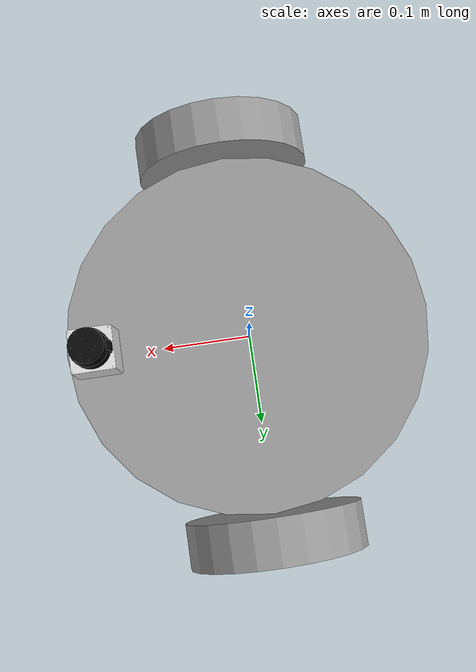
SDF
<?xml version='1.0'?>
<sdf version='1.6'>
  <model name='LastDay'>
    <link name='link_0'>
      <pose frame=''>0.001888 -0.000564 -0.002404 0 -0 0</pose>
      <inertial>
        <mass>1</mass>
        <inertia>
          <ixx>0.145833</ixx>
          <ixy>0</ixy>
          <ixz>0</ixz>
          <iyy>0.145833</iyy>
          <iyz>0</iyz>
          <izz>0.125</izz>
        </inertia>
        <pose frame=''>0 0 0 0 -0 0</pose>
      </inertial>
      <gravity>1</gravity>
      <self_collide>0</self_collide>
      <kinematic>0</kinematic>
      <visual name='visual'>
        <pose frame=''>0 0 0 0 -0 0</pose>
        <geometry>
          <cylinder>
            <radius>0.2</radius>
            <length>0.1</length>
          </cylinder>
        </geometry>
        <material>
          <lighting>1</lighting>
          <script>
            <uri>file://media/materials/scripts/gazebo.material</uri>
            <name>Gazebo/Grey</name>
          </script>
          <ambient>0.3 0.3 0.3 1</ambient>
          <diffuse>0.7 0.7 0.7 1</diffuse>
          <specular>0.01 0.01 0.01 1</specular>
          <emissive>0 0 0 1</emissive>
          <shader type='vertex'>
            <normal_map>__default__</normal_map>
          </shader>
        </material>
        <cast_shadows>1</cast_shadows>
        <transparency>0</transparency>
      </visual>
      <collision name='collision'>
        <laser_retro>0</laser_retro>
        <max_contacts>10</max_contacts>
        <pose frame=''>0 0 0 0 -0 0</pose>
        <geometry>
          <cylinder>
            <radius>0.2</radius>
            <length>0.1</length>
          </cylinder>
        </geometry>
        <surface>
          <friction>
            <ode>
              <mu>1</mu>
              <mu2>1</mu2>
              <fdir1>0 0 0</fdir1>
              <slip1>0</slip1>
              <slip2>0</slip2>
            </ode>
            <torsional>
              <coefficient>1</coefficient>
              <patch_radius>0</patch_radius>
              <surface_radius>0</surface_radius>
              <use_patch_radius>1</use_patch_radius>
              <ode>
                <slip>0</slip>
              </ode>
            </torsional>
          </friction>
          <bounce>
            <restitution_coefficient>0</restitution_coefficient>
            <threshold>1e+06</threshold>
          </bounce>
          <contact>
            <collide_without_contact>0</collide_without_contact>
            <collide_without_contact_bitmask>1</collide_without_contact_bitmask>
            <collide_bitmask>1</collide_bitmask>
            <ode>
              <soft_cfm>0</soft_cfm>
              <soft_erp>0.2</soft_erp>
              <kp>1e+13</kp>
              <kd>1</kd>
              <max_vel>0.01</max_vel>
              <min_depth>0</min_depth>
            </ode>
            <bullet>
              <split_impulse>1</split_impulse>
              <split_impulse_penetration_threshold>-0.01</split_impulse_penetration_threshold>
              <soft_cfm>0</soft_cfm>
              <soft_erp>0.2</soft_erp>
              <kp>1e+13</kp>
              <kd>1</kd>
            </bullet>
          </contact>
        </surface>
      </collision>
    </link>
    <link name='link_1'>
      <pose frame=''>0.001888 -0.225573 -0.002404 1.5707 -0 0</pose>
      <inertial>
        <mass>1</mass>
        <inertia>
          <ixx>0.145833</ixx>
          <ixy>0</ixy>
          <ixz>0</ixz>
          <iyy>0.145833</iyy>
          <iyz>0</iyz>
          <izz>0.125</izz>
        </inertia>
        <pose frame=''>0 0 0 0 -0 0</pose>
      </inertial>
      <gravity>1</gravity>
      <self_collide>0</self_collide>
      <kinematic>0</kinematic>
      <visual name='visual'>
        <pose frame=''>0 0 0 0 -0 0</pose>
        <geometry>
          <cylinder>
            <radius>0.1</radius>
            <length>0.05</length>
          </cylinder>
        </geometry>
        <material>
          <lighting>1</lighting>
          <script>
            <uri>file://media/materials/scripts/gazebo.material</uri>
            <name>Gazebo/Grey</name>
          </script>
          <ambient>0.3 0.3 0.3 1</ambient>
          <diffuse>0.7 0.7 0.7 1</diffuse>
          <specular>0.01 0.01 0.01 1</specular>
          <emissive>0 0 0 1</emissive>
          <shader type='vertex'>
            <normal_map>__default__</normal_map>
          </shader>
        </material>
        <cast_shadows>1</cast_shadows>
        <transparency>0</transparency>
      </visual>
      <collision name='collision'>
        <laser_retro>0</laser_retro>
        <max_contacts>10</max_contacts>
        <pose frame=''>0 0 0 0 -0 0</pose>
        <geometry>
          <cylinder>
            <radius>0.1</radius>
            <length>0.05</length>
          </cylinder>
        </geometry>
        <surface>
          <friction>
            <ode>
              <mu>1</mu>
              <mu2>1</mu2>
              <fdir1>0 0 0</fdir1>
              <slip1>0</slip1>
              <slip2>0</slip2>
            </ode>
            <torsional>
              <coefficient>1</coefficient>
              <patch_radius>0</patch_radius>
              <surface_radius>0</surface_radius>
              <use_patch_radius>1</use_patch_radius>
              <ode>
                <slip>0</slip>
              </ode>
            </torsional>
          </friction>
          <bounce>
            <restitution_coefficient>0</restitution_coefficient>
            <threshold>1e+06</threshold>
          </bounce>
          <contact>
            <collide_without_contact>0</collide_without_contact>
            <collide_without_contact_bitmask>1</collide_without_contact_bitmask>
            <collide_bitmask>1</collide_bitmask>
            <ode>
              <soft_cfm>0</soft_cfm>
              <soft_erp>0.2</soft_erp>
              <kp>1e+13</kp>
              <kd>1</kd>
              <max_vel>0.01</max_vel>
              <min_depth>0</min_depth>
            </ode>
            <bullet>
              <split_impulse>1</split_impulse>
              <split_impulse_penetration_threshold>-0.01</split_impulse_penetration_threshold>
              <soft_cfm>0</soft_cfm>
              <soft_erp>0.2</soft_erp>
              <kp>1e+13</kp>
              <kd>1</kd>
            </bullet>
          </contact>
        </surface>
      </collision>
    </link>
    <link name='link_1_clone'>
      <pose frame=''>0.001888 0.224446 -0.002404 1.5707 -0 0</pose>
      <inertial>
        <mass>1</mass>
        <inertia>
          <ixx>0.145833</ixx>
          <ixy>0</ixy>
          <ixz>0</ixz>
          <iyy>0.145833</iyy>
          <iyz>0</iyz>
          <izz>0.125</izz>
        </inertia>
        <pose frame=''>0 0 0 0 -0 0</pose>
      </inertial>
      <self_collide>0</self_collide>
      <kinematic>0</kinematic>
      <gravity>1</gravity>
      <visual name='visual'>
        <pose frame=''>0 0 0 0 -0 0</pose>
        <geometry>
          <cylinder>
            <radius>0.1</radius>
            <length>0.05</length>
          </cylinder>
        </geometry>
        <material>
          <lighting>1</lighting>
          <script>
            <uri>file://media/materials/scripts/gazebo.material</uri>
            <name>Gazebo/Grey</name>
          </script>
          <ambient>0.3 0.3 0.3 1</ambient>
          <diffuse>0.7 0.7 0.7 1</diffuse>
          <specular>0.01 0.01 0.01 1</specular>
          <emissive>0 0 0 1</emissive>
          <shader type='vertex'>
            <normal_map>__default__</normal_map>
          </shader>
        </material>
        <cast_shadows>1</cast_shadows>
        <transparency>0</transparency>
      </visual>
      <collision name='collision'>
        <laser_retro>0</laser_retro>
        <max_contacts>10</max_contacts>
        <pose frame=''>0 0 0 0 -0 0</pose>
        <geometry>
          <cylinder>
            <radius>0.1</radius>
            <length>0.05</length>
          </cylinder>
        </geometry>
        <surface>
          <friction>
            <ode>
              <mu>1</mu>
              <mu2>1</mu2>
              <fdir1>0 0 0</fdir1>
              <slip1>0</slip1>
              <slip2>0</slip2>
            </ode>
            <torsional>
              <coefficient>1</coefficient>
              <patch_radius>0</patch_radius>
              <surface_radius>0</surface_radius>
              <use_patch_radius>1</use_patch_radius>
              <ode>
                <slip>0</slip>
              </ode>
            </torsional>
          </friction>
          <bounce>
            <restitution_coefficient>0</restitution_coefficient>
            <threshold>1e+06</threshold>
          </bounce>
          <contact>
            <collide_without_contact>0</collide_without_contact>
            <collide_without_contact_bitmask>1</collide_without_contact_bitmask>
            <collide_bitmask>1</collide_bitmask>
            <ode>
              <soft_cfm>0</soft_cfm>
              <soft_erp>0.2</soft_erp>
              <kp>1e+13</kp>
              <kd>1</kd>
              <max_vel>0.01</max_vel>
              <min_depth>0</min_depth>
            </ode>
            <bullet>
              <split_impulse>1</split_impulse>
              <split_impulse_penetration_threshold>-0.01</split_impulse_penetration_threshold>
              <soft_cfm>0</soft_cfm>
              <soft_erp>0.2</soft_erp>
              <kp>1e+13</kp>
              <kd>1</kd>
            </bullet>
          </contact>
        </surface>
      </collision>
    </link>
    <link name='link_2'>
      <pose frame=''>-0.173112 -0.000564 -0.077404 0 -0 0</pose>
      <inertial>
        <mass>1</mass>
        <inertia>
          <ixx>0.1</ixx>
          <ixy>0</ixy>
          <ixz>0</ixz>
          <iyy>0.1</iyy>
          <iyz>0</iyz>
          <izz>0.1</izz>
        </inertia>
        <pose frame=''>0 0 0 0 -0 0</pose>
      </inertial>
      <gravity>1</gravity>
      <self_collide>0</self_collide>
      <kinematic>0</kinematic>
      <visual name='visual'>
        <pose frame=''>0 0 0 0 -0 0</pose>
        <geometry>
          <sphere>
            <radius>0.025</radius>
          </sphere>
        </geometry>
        <material>
          <lighting>1</lighting>
          <script>
            <uri>file://media/materials/scripts/gazebo.material</uri>
            <name>Gazebo/Grey</name>
          </script>
          <ambient>0.3 0.3 0.3 1</ambient>
          <diffuse>0.7 0.7 0.7 1</diffuse>
          <specular>0.01 0.01 0.01 1</specular>
          <emissive>0 0 0 1</emissive>
          <shader type='vertex'>
            <normal_map>__default__</normal_map>
          </shader>
        </material>
        <cast_shadows>1</cast_shadows>
        <transparency>0</transparency>
      </visual>
      <collision name='collision'>
        <laser_retro>0</laser_retro>
        <max_contacts>10</max_contacts>
        <pose frame=''>0 0 0 0 -0 0</pose>
        <geometry>
          <sphere>
            <radius>0.025</radius>
          </sphere>
        </geometry>
        <surface>
          <friction>
            <ode>
              <mu>1</mu>
              <mu2>1</mu2>
              <fdir1>0 0 0</fdir1>
              <slip1>0</slip1>
              <slip2>0</slip2>
            </ode>
            <torsional>
              <coefficient>1</coefficient>
              <patch_radius>0</patch_radius>
              <surface_radius>0</surface_radius>
              <use_patch_radius>1</use_patch_radius>
              <ode>
                <slip>0</slip>
              </ode>
            </torsional>
          </friction>
          <bounce>
            <restitution_coefficient>0</restitution_coefficient>
            <threshold>1e+06</threshold>
          </bounce>
          <contact>
            <collide_without_contact>0</collide_without_contact>
            <collide_without_contact_bitmask>1</collide_without_contact_bitmask>
            <collide_bitmask>1</collide_bitmask>
            <ode>
              <soft_cfm>0</soft_cfm>
              <soft_erp>0.2</soft_erp>
              <kp>1e+13</kp>
              <kd>1</kd>
              <max_vel>0.01</max_vel>
              <min_depth>0</min_depth>
            </ode>
            <bullet>
              <split_impulse>1</split_impulse>
              <split_impulse_penetration_threshold>-0.01</split_impulse_penetration_threshold>
              <soft_cfm>0</soft_cfm>
              <soft_erp>0.2</soft_erp>
              <kp>1e+13</kp>
              <kd>1</kd>
            </bullet>
          </contact>
        </surface>
      </collision>
    </link>
    <model name='hokuyo'>
      <link name='link'>
        <gravity>0</gravity>
        <inertial>
          <mass>0.1</mass>
        </inertial>
        <visual name='visual'>
          <geometry>
            <mesh>
              <uri>model://hokuyo/meshes/hokuyo.dae</uri>
            </mesh>
          </geometry>
        </visual>
        <sensor name='laser' type='ray'>
          <pose frame=''>0.01 0 0.03 0 -0 0</pose>
          <ray>
            <scan>
              <horizontal>
                <samples>640</samples>
                <resolution>1</resolution>
                <min_angle>-2.26889</min_angle>
                <max_angle>2.2689</max_angle>
              </horizontal>
            </scan>
            <range>
              <min>0.08</min>
              <max>10</max>
              <resolution>0.01</resolution>
            </range>
          </ray>
          <plugin name="laser_back" filename="libgazebo_ros_laser.so">
          <topicName>/hokuyo_laser</topicName>
          <frameName>hokuyo</frameName>
          </plugin>
          <always_on>1</always_on>
          <update_rate>30</update_rate>
          <visualize>1</visualize>
        </sensor>
      </link>
      <pose frame=''>0.167446 0.002256 0.084616 0 -0 0</pose>
    </model>
    <joint name='LWJoint' type='revolute'>
      <parent>link_0</parent>
      <child>link_1</child>
      <pose frame=''>0 0 0 0 -0 0</pose>
      <axis>
        <xyz>0 0 1</xyz>
        <use_parent_model_frame>0</use_parent_model_frame>
        <limit>
          <lower>-1.79769e+308</lower>
          <upper>1.79769e+308</upper>
          <effort>-1</effort>
          <velocity>-1</velocity>
        </limit>
        <dynamics>
          <spring_reference>0</spring_reference>
          <spring_stiffness>0</spring_stiffness>
          <damping>0</damping>
          <friction>0</friction>
        </dynamics>
      </axis>
      <physics>
        <ode>
          <limit>
            <cfm>0</cfm>
            <erp>0.2</erp>
          </limit>
          <suspension>
            <cfm>0</cfm>
            <erp>0.2</erp>
          </suspension>
        </ode>
      </physics>
    </joint>
    <joint name='CasterJoint' type='ball'>
      <parent>link_0</parent>
      <child>link_2</child>
      <pose frame=''>0 0 0 0 -0 0</pose>
      <physics>
        <ode>
          <limit>
            <cfm>0</cfm>
            <erp>0.2</erp>
          </limit>
          <suspension>
            <cfm>0</cfm>
            <erp>0.2</erp>
          </suspension>
        </ode>
      </physics>
    </joint>
    <joint name='RWJoint' type='revolute'>
      <parent>link_0</parent>
      <child>link_1_clone</child>
      <pose frame=''>0 0 0 0 -0 0</pose>
      <axis>
        <xyz>0 0 1</xyz>
        <use_parent_model_frame>0</use_parent_model_frame>
        <limit>
          <lower>-1.79769e+308</lower>
          <upper>1.79769e+308</upper>
          <effort>-1</effort>
          <velocity>-1</velocity>
        </limit>
        <dynamics>
          <spring_reference>0</spring_reference>
          <spring_stiffness>0</spring_stiffness>
          <damping>0</damping>
          <friction>0</friction>
        </dynamics>
      </axis>
      <physics>
        <ode>
          <limit>
            <cfm>0</cfm>
            <erp>0.2</erp>
          </limit>
          <suspension>
            <cfm>0</cfm>
            <erp>0.2</erp>
          </suspension>
        </ode>
      </physics>
    </joint>
    <joint name='HokuyoJoint' type='fixed'>
      <parent>link_0</parent>
      <child>hokuyo::link</child>
      <pose frame=''>0 0 0 0 -0 0</pose>
      <physics>
        <ode>
          <limit>
            <cfm>0</cfm>
            <erp>0.2</erp>
          </limit>
          <suspension>
            <cfm>0</cfm>
            <erp>0.2</erp>
          </suspension>
        </ode>
      </physics>
    </joint>
    <plugin name="differential_drive_controller" filename="libgazebo_ros_diff_drive.so">
 <alwaysOn>true</alwaysOn>
 <updateRate>20</updateRate>
 <legacyMode>false</legacyMode>
 <leftJoint>LWJoint</leftJoint>
 <rightJoint>RWJoint</rightJoint>
 <wheelSeparation>0.5</wheelSeparation>
 <wheelDiameter>0.2</wheelDiameter>
 <torque>20</torque>
 <commandTopic>cmd_vel</commandTopic>
 <odometryTopic>odom</odometryTopic>
 <odometryFrame>odom</odometryFrame>
 <robotBaseFrame>chassis</robotBaseFrame>

 </plugin>
    <static>0</static>
    <allow_auto_disable>1</allow_auto_disable>
  </model>
</sdf>
